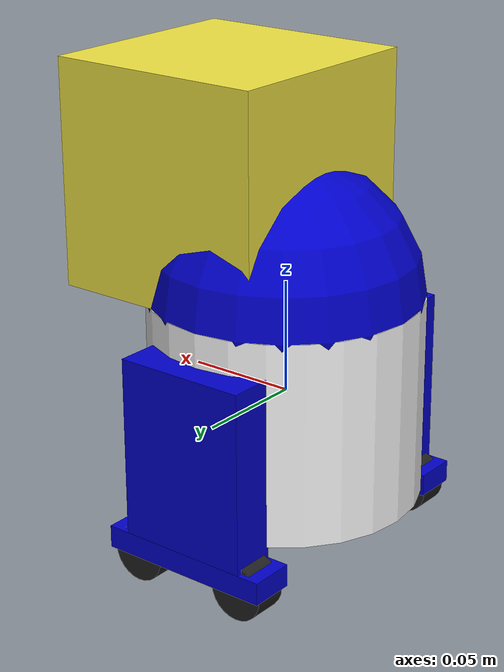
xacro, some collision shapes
<?xml version="1.0"?>
<robot name="mini_r2" xmlns:xacro="http://ros.org/wiki/xacro">

	<!-- Initialized macro variables -->
	<xacro:property name="pi" value="3.1415"/>
	<xacro:property name="width" value="0.06"/>
	<xacro:property name="bodyLength" value="0.09"/>
	<xacro:property name="baseLength" value="0.08"/>
	<xacro:property name="legMass" value="20.0"/>
	<xacro:property name="bodyMass" value="10.0"/>
	<xacro:property name="wheelMass" value="5.0"/>
	<xacro:property name="wheelDiam" value="0.025"/>
	<xacro:property name="polelen" value="0.12" />

	<!-- Color descriptions -->
	<material name="white">
        <color rgba="0 0 0.8 1"/>
    </material>

	<material name="red">
		<color rgba="0 0 0 1"/>
	</material>

	<material name="blue">
		<color rgba="1 1 1 1"/>
	</material>

	<material name="grey">
		<color rgba="0.8 0.8 0.8 1"/>
	</material>

	<xacro:macro name="default_inertial" params="mass">
    	<inertial>
      		<mass value="${mass}" />
      		<inertia ixx="1.0" ixy="0.0" ixz="0.0" iyy="1.0" iyz="0.0" izz="1.0" />
    	</inertial>
 	</xacro:macro>

	<xacro:include filename="$(find slam_project)/urdf/project_robot.gazebo"/>

	<link name="robot_footprint"></link>

	<link name="base_link">
		<pose>0 0 0.1 0 0 0</pose>

		<visual>
			<geometry>
				<cylinder radius="${width}" length="${bodyLength}"/>
			</geometry>
			<material name="blue"/>
		</visual>
		<collision>
			<geometry>
				<cylinder radius="${width}" length="${bodyLength}"/>
			</geometry>
		</collision>
		<xacro:default_inertial mass="${bodyMass}"/>
	</link>

	<joint name="base_footprint_joint" type="fixed">
		<origin xyz="0 0 0" rpy="0 0 0"/>
		<parent link="robot_footprint"/>
		<child link="base_link"/>
	</joint>

	<xacro:macro name="wheel" params="prefix suffix reflect">
		<link name="${prefix}_${suffix}_wheel">
			<visual>
				<origin xyz="0 0 0" rpy="${pi/2} 0 0"/>
				<geometry>
					<cylinder radius="${wheelDiam/2}" length="0.015"/>
				</geometry>
				<material name="black"/>
			</visual>

			<collision>
				<origin xyz="0 0 0" rpy="${pi/2} 0 0"/>
				<geometry>
					<cylinder radius="${wheelDiam/2}" length="0.015"/>
				</geometry>
			</collision>

			<xacro:default_inertial mass="${wheelMass}"/>
		</link>

		<joint name="${prefix}_${suffix}_wheel_joint" type="continuous">
			<origin xyz="${(baseLength*reflect)/3} 0 -0.005" rpy="0 0 0"/>
			<parent link="${prefix}_leg_base"/>
			<child link="${prefix}_${suffix}_wheel"/>
			<axis xyz="0 1 0"/>
		</joint>
	</xacro:macro>

	<xacro:macro name="leg" params="prefix reflect">

		<link name="${prefix}_leg">
			<visual>
				<origin xyz="0 0 0" rpy="${pi/2} 0 0"/>
				<geometry>
					<box size="${width} ${bodyLength} 0.02"/>
				</geometry>
				<material name="white"/>
			</visual>

			<collision>
				<origin xyz="0 0 0" rpy="${pi/2} 0 0"/>
				<geometry>
					<box size="${bodyLength} ${width} 0.02"/>
				</geometry>
			</collision>

			<xacro:default_inertial mass="${legMass}"/>
		</link>

		<joint name="${prefix}_leg_joint" type="fixed">
			<origin xyz="0 ${reflect * 0.061} -0.015" rpy="0 0 0"/>
			<parent link="base_link"/>
			<child link="${prefix}_leg"/>
		</joint>

		<link name="${prefix}_leg_base">
			<visual>
				<geometry>
					<box size="${baseLength} 0.02 0.01"/>
				</geometry>
				<material name="white"/>
			</visual>

			<collision>
				<geometry>
					<box size="${baseLength} 0.02 0.01"/>
				</geometry>
			</collision>

			<xacro:default_inertial mass="${legMass}"/>
		</link>

		<joint name="${prefix}_leg_base_joint" type="fixed">
			<origin xyz="0 0 -0.04"/>
			<parent link="${prefix}_leg"/>
			<child link="${prefix}_leg_base"/>
		</joint>

    	<xacro:wheel prefix="${prefix}" suffix="front" reflect="1"/>
    	<xacro:wheel prefix="${prefix}" suffix="back" reflect="-1"/>

	</xacro:macro>

	<xacro:leg prefix="right" reflect="-1"/>
	<xacro:leg prefix="left"  reflect="1"/>

	<link name="head">
		<visual>
			<geometry>
				<sphere radius="${width}"/>
			</geometry>
			<material name="white"/>
		</visual>

		<collision>
			<geometry>
				<sphere radius="${width}"/>
			</geometry>
		</collision>

		<xacro:default_inertial mass="5"/>
	</link>

	<joint name="head_body_joint" type="fixed">
		<origin xyz="0 0 ${bodyLength/2}"/>
		<parent link="base_link"/>
		<child link="head"/>
	</joint>

	<link name="hokuyo">
		<visual name="hokuyo_visual">
			<origin xyz="0 0 0" rpy="0 0 0"/>
			<geometry>
				<mesh filename="package://slam_project/meshes/hokuyo.dae"/>
			</geometry>
		</visual>

		<collision name="hokuyo_collision">
			<origin xyz="0 0 0" rpy="0 0 0"/>
			<geometry>
				<box size="0.1 0.1 0.1"/>
			</geometry>
		</collision>

		<inertial>
            <mass value="0.1"/>
            <origin xyz="0 0 0" rpy="0 0 0"/>
            <inertia
                    ixx="1e-6" ixy="0" ixz="0"
                    iyy="1e-6" iyz="0"
                    izz="1e-6"
            />
        </inertial>
	</link>

	<joint name="hokuyo_joint" type="fixed">
		<origin xyz="0.03 0 0.05" rpy="0 0 0"/>
		<parent link="head"/>
		<child link="hokuyo"/>
	</joint>

        <link name="camera">
		<visual name="camera_visual">
			<origin xyz="0 0 0" rpy="${pi/2} 0 0"/>
			<geometry>
				<cylinder radius="0.006" length="0.04"/>
			</geometry>
			<material name="black"/>
		</visual>

		<collision name="camera_collision">
			<origin xyz="0 0 0" rpy="${pi/2} 0 0"/>
			<geometry>
				<cylinder radius="0.006" length="0.4"/>
			</geometry>
		</collision>

		<inertial>
            <mass value="0.1"/>
            <origin xyz="0 0 0" rpy="0 0 0"/>
            <inertia
                    ixx="1e-6" ixy="0" ixz="0"
                    iyy="1e-6" iyz="0"
                    izz="1e-6"
            />
        </inertial>
	</link>

	<joint name="camera_joint" type="fixed">
		<origin xyz="${width-0.002} 0 0" rpy="0 0 0"/>
		<parent link="head"/>
		<child link="camera"/>
	</joint>

	<link name="camera_rgbd_frame"></link>

	<joint name="camera_rgbd_joint" type="fixed">
		<origin rpy="-${pi/2} 0 -${pi/2}"/>
		<parent link="camera"/>
		<child link="camera_rgbd_frame"/>
	</joint>

</robot>
